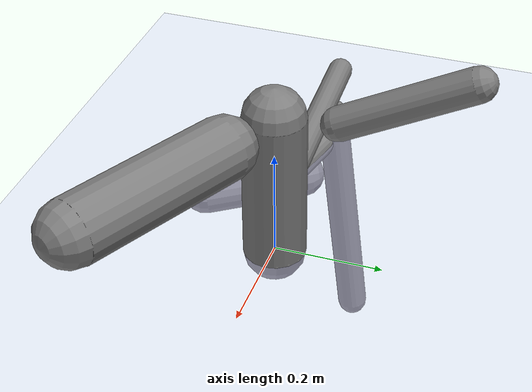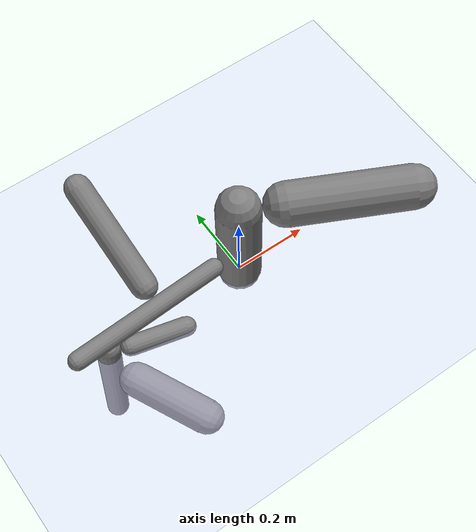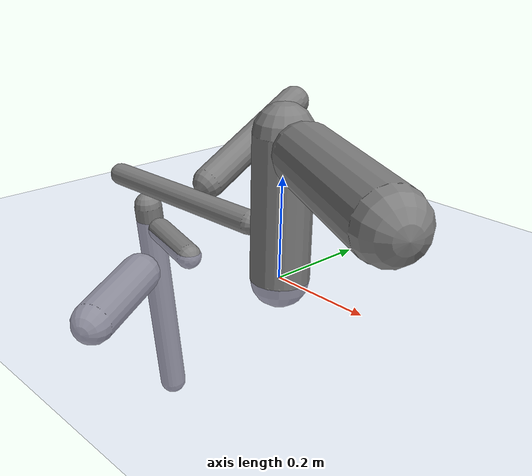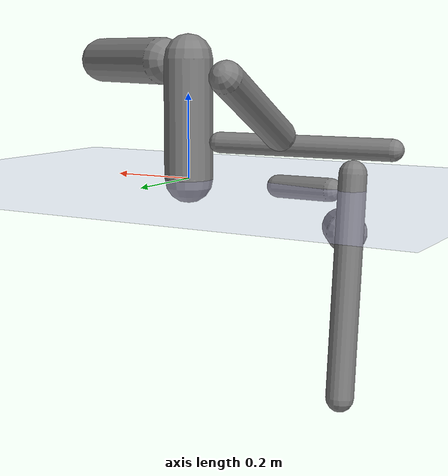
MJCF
<?xml version='1.0' encoding='UTF-8'?>
<mujoco model="robot_model">
  <worldbody>
    <light name="light" pos="0 -3 10" dir="0 0.5 -1" diffuse=".8 .8 .8" specular="0.1 0.1 0.1"/>
    <geom name="floor" type="plane" size="10.0 10.0 0.1" pos="0 0 0" rgba="0.8 0.8 1 1" contype="2" conaffinity="1"/>
    <body name="limb0" pos="0 0 0">
      <geom name="limb0_geom" type="capsule" fromto="0 0 0 0 0 0.2799738255361348" size="0.05756578340912265" density="815.1362099342192" contype="1" conaffinity="2"/>
      <site type="sphere" size="0.01" name="limb0_site0" pos="-0.0820467910820121 -0.004160777248877592 0.08847312475178644" quat="0.7071067811865476 0.035812953632730245 -0.7061992865700869 0.0"/>
      <site type="sphere" size="0.01" name="limb0_site1" pos="0.10282668581799398 -0.050852598181851366 0.2735437953981448" quat="0.7071067811865476 0.3134595625815783 0.6338320776247961 0.0"/>
      <freejoint name="limb0_root"/>
      <body name="limb1" pos="-0.0820467910820121 -0.004160777248877592 0.08847312475178644" quat="0.7071067811865476 0.035812953632730245 -0.7061992865700869 0.0">
        <geom name="limb1_geom" type="capsule" fromto="0 0 0 0 0 0.41232011657988055" size="0.024586441114441637" density="1122.1353599484698" contype="1" conaffinity="2"/>
        <site type="sphere" size="0.01" name="limb1_site0" pos="-0.055592265485965284 0.0035926328195533233 0.3267415901813807" quat="0.7071067811865476 -0.045601430650075464 -0.7056348273169815 0.0"/>
        <site type="sphere" size="0.01" name="limb1_site1" pos="0.024032361832899363 0.054507946797922896 0.174003750487796" quat="0.7071067811865476 -0.6470114650255221 0.28526507694691194 0.0"/>
        <body name="limb2" pos="-0.055592265485965284 0.0035926328195533233 0.3267415901813807" quat="0.7071067811865476 -0.045601430650075464 -0.7056348273169815 0.0">
          <geom name="limb2_geom" type="capsule" fromto="0 0 0 0 0 0.4889589051366479" size="0.03112178980737259" density="785.1601357299012" contype="1" conaffinity="2"/>
          <site type="sphere" size="0.01" name="limb2_site0" pos="-0.03573312300293949 -0.06837867658753931 0.13233594321504516" quat="0.7071067811865476 0.6266946826244069 -0.32749622100154663 0.0"/>
          <site type="sphere" size="0.01" name="limb2_site1" pos="-0.056191404401370305 -0.012275511703749298 0.0373755399778887" quat="0.7071067811865476 0.15091458538187963 -0.6908145828795272 0.0"/>
          <body name="limb3" pos="-0.03573312300293949 -0.06837867658753931 0.13233594321504516" quat="0.7071067811865476 0.6266946826244069 -0.32749622100154663 0.0">
            <geom name="limb3_geom" type="capsule" fromto="0 0 0 0 0 0.20587440072907823" size="0.04603065339053593" density="1089.820416514438" contype="1" conaffinity="2"/>
            <joint name="joint_limb2_limb3_0" type="hinge" axis="1 0 0" range="-76.8184141901732 76.8184141901732" damping="5.0"/>
          </body>
          <body name="limb4" pos="-0.056191404401370305 -0.012275511703749298 0.0373755399778887" quat="0.7071067811865476 0.15091458538187963 -0.6908145828795272 0.0">
            <geom name="limb4_geom" type="capsule" fromto="0 0 0 0 0 0.14919347938278688" size="0.026394834886599366" density="526.9905097920008" contype="1" conaffinity="2"/>
            <joint name="joint_limb2_limb4_0" type="hinge" axis="0 0 1" range="-36.57311519522722 36.57311519522722" damping="5.0"/>
          </body>
          <joint name="joint_limb1_limb2_0" type="hinge" axis="1 0 0" range="-60.6612845033848 60.6612845033848" damping="5.0"/>
        </body>
        <body name="limb5" pos="0.024032361832899363 0.054507946797922896 0.174003750487796" quat="0.7071067811865476 -0.6470114650255221 0.28526507694691194 0.0">
          <geom name="limb5_geom" type="capsule" fromto="0 0 0 0 0 0.28928158855542757" size="0.03498427886939431" density="573.2226405414596" contype="1" conaffinity="2"/>
          <joint name="joint_limb1_limb5_0" type="hinge" axis="1 0 0" range="-48.18281063347258 48.18281063347258" damping="5.0"/>
        </body>
        <joint name="joint_limb0_limb1_0" type="hinge" axis="0 1 0" range="-79.43746025127588 79.43746025127588" damping="5.0"/>
      </body>
      <body name="limb6" pos="0.10282668581799398 -0.050852598181851366 0.2735437953981448" quat="0.7071067811865476 0.3134595625815783 0.6338320776247961 0.0">
        <geom name="limb6_geom" type="capsule" fromto="0 0 0 0 0 0.31417880181991165" size="0.05714827003751167" density="963.189887149966" contype="1" conaffinity="2"/>
        <joint name="joint_limb0_limb6_0" type="hinge" axis="1 0 0" range="-112.68384771594633 112.68384771594633" damping="5.0"/>
      </body>
    </body>
  </worldbody>
  <actuator>
    <position name="position_actuator_joint_limb0_limb1_0" joint="joint_limb0_limb1_0" gear="1.5835672608966855" inheritrange="1" forcerange="-4.742595075934674 4.742595075934674" forcelimited="true" kp="100.0"/>
    <position name="position_actuator_joint_limb1_limb2_0" joint="joint_limb1_limb2_0" gear="0.9597608262960533" inheritrange="1" forcerange="-6.336588271115302 6.336588271115302" forcelimited="true" kp="100.0"/>
    <position name="position_actuator_joint_limb2_limb3_0" joint="joint_limb2_limb3_0" gear="1.4426881968183625" inheritrange="1" forcerange="-9.693587687008968 9.693587687008968" forcelimited="true" kp="100.0"/>
    <position name="position_actuator_joint_limb2_limb4_0" joint="joint_limb2_limb4_0" gear="1.7107518951402347" inheritrange="1" forcerange="-1.0633834804654576 1.0633834804654576" forcelimited="true" kp="100.0"/>
    <position name="position_actuator_joint_limb1_limb5_0" joint="joint_limb1_limb5_0" gear="1.8903065910928873" inheritrange="1" forcerange="-3.701982454396224 3.701982454396224" forcelimited="true" kp="100.0"/>
    <position name="position_actuator_joint_limb0_limb6_0" joint="joint_limb0_limb6_0" gear="1.1155539767784568" inheritrange="1" forcerange="-19.289529212287043 19.289529212287043" forcelimited="true" kp="100.0"/>
  </actuator>
  <contact>
    <pair geom1="limb0_geom" geom2="limb1_geom"/>
    <pair geom1="limb1_geom" geom2="limb2_geom"/>
    <pair geom1="limb2_geom" geom2="limb3_geom"/>
    <pair geom1="limb2_geom" geom2="limb4_geom"/>
    <pair geom1="limb1_geom" geom2="limb5_geom"/>
    <pair geom1="limb0_geom" geom2="limb6_geom"/>
  </contact>
</mujoco>
